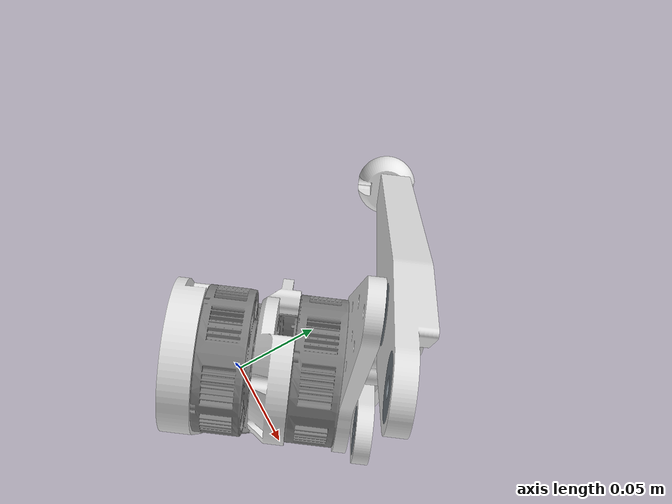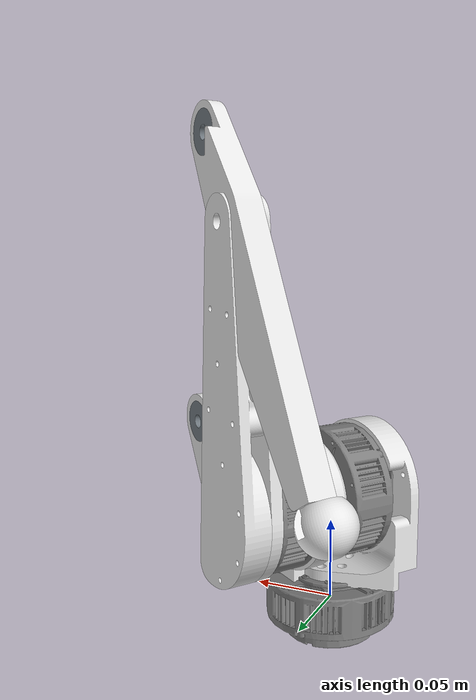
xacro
<?xml version="1.0" ?>
<!-- Generated using onshape-to-robot -->
<!-- Onshape https://cad.onshape.com/documents/bab46d1a02d1cb675f27d5f3/w/8adfe612a59991dc5461d3ee/e/fd595c6fbcbfabdca437c483 -->
<robot name="leg" xmlns:xacro="http://www.ros.org/wiki/xacro">
<xacro:arg name="sim_mode" default="true"/>

<xacro:if value="$(arg sim_mode)">
  <xacro:include filename="$(find quadro)/description/leg.gazebo" />
</xacro:if>

  <link name="world"/>

  <joint name="fixed" type="fixed">
    <parent link="world"/>
    <child link="motor"/>
  </joint>

  <!-- Link shaft -->
  <link name="shaft">
    <inertial>
      <origin xyz="-0.00100224 0.00617513 0.0818763" rpy="0 0 0"/>
      <mass value="0.453012"/>
      <inertia ixx="0.000489604" ixy="-7.28122e-06" ixz="1.56037e-06" iyy="0.000609097" iyz="-1.64399e-05" izz="0.000239462"/>
    </inertial>
    <!-- Part shaft -->
    <visual>
      <origin xyz="-8.07509e-16 -4.69306e-16 0.011" rpy="0.872665 -1.5708 0"/>
      <geometry>
        <mesh filename="file://$(find quadro)/description/leg_assets/shaft.stl"/>
      </geometry>
      <material name="shaft_material">
        <color rgba="0.498039 0.498039 0.498039 1"/>
      </material>
    </visual>
    <collision>
      <origin xyz="-8.07509e-16 -4.69306e-16 0.011" rpy="0.872665 -1.5708 0"/>
      <geometry>
        <mesh filename="file://$(find quadro)/description/leg_assets/shaft.stl"/>
      </geometry>
    </collision>
    <!-- Part motor -->
    <visual>
      <origin xyz="-0.00148165 0.0169353 0.0945" rpy="-1.5708 8.89644e-15 -1.48353"/>
      <geometry>
        <mesh filename="file://$(find quadro)/description/leg_assets/motor.stl"/>
      </geometry>
      <material name="motor_material">
        <color rgba="0.498039 0.498039 0.498039 1"/>
      </material>
    </visual>
    <collision>
      <origin xyz="-0.00148165 0.0169353 0.0945" rpy="-1.5708 8.89644e-15 -1.48353"/>
      <geometry>
        <mesh filename="file://$(find quadro)/description/leg_assets/motor.stl"/>
      </geometry>
    </collision>
    <!-- Part lin_1_support_bl -->
    <visual>
      <origin xyz="-0.00845411 0.0966309 0.0945" rpy="3.05433 1.5708 0"/>
      <geometry>
        <mesh filename="file://$(find quadro)/description/leg_assets/lin_1_support_bl.stl"/>
      </geometry>
      <material name="lin_1_support_bl_material">
        <color rgba="0.901961 0.901961 0.901961 1"/>
      </material>
    </visual>
    <collision>
      <origin xyz="-0.00845411 0.0966309 0.0945" rpy="3.05433 1.5708 0"/>
      <geometry>
        <mesh filename="file://$(find quadro)/description/leg_assets/lin_1_support_bl.stl"/>
      </geometry>
    </collision>
  </link>
  <!-- Link motor -->
  <link name="motor">
    <inertial>
      <origin xyz="-0.00034083 -2.5357e-05 0.00266737" rpy="0 0 0"/>
      <mass value="0.319783"/>
      <inertia ixx="0.00016651" ixy="-2.01865e-06" ixz="-8.2078e-07" iyy="0.000167286" iyz="9.47527e-07" izz="0.000282579"/>
    </inertial>
    <!-- Part motor_2 -->
    <visual>
      <origin xyz="-6.78949e-19 8.0914e-19 -0.01" rpy="2.26893 -1.5708 0"/>
      <geometry>
        <mesh filename="file://$(find quadro)/description/leg_assets/motor.stl"/>
      </geometry>
      <material name="motor_2_material">
        <color rgba="0.498039 0.498039 0.498039 1"/>
      </material>
    </visual>
    <collision>
      <origin xyz="-6.78949e-19 8.0914e-19 -0.01" rpy="2.26893 -1.5708 0"/>
      <geometry>
        <mesh filename="file://$(find quadro)/description/leg_assets/motor.stl"/>
      </geometry>
    </collision>
  </link>
  <!-- Joint from motor to shaft -->
  <joint name="bl_m1_s1" type="revolute">
    <origin xyz="-7.16465e-16 -4.82211e-16 -0.025" rpy="4.96925e-15 -7.80392e-15 2.44346"/>
    <parent link="motor"/>
    <child link="shaft"/>
    <axis xyz="0 0 1"/>
    <limit effort="10" velocity="12" lower="-3.14" upper="3.14"/>
    <joint_properties friction="0.5"/>
  </joint>
  <!-- Link shaft_2 -->
  <link name="shaft_2">
    <inertial>
      <origin xyz="0.00679431 0.00633758 -0.0491985" rpy="0 0 0"/>
      <mass value="0.524841"/>
      <inertia ixx="0.000610231" ixy="-0.000236595" ixz="0.000101861" iyy="0.000743295" iyz="0.00010283" izz="0.000885096"/>
    </inertial>
    <!-- Part lin_2_bl -->
    <visual>
      <origin xyz="-1.38778e-17 6.93889e-18 -0.0195" rpy="1.5708 -9.2554e-16 -0.174533"/>
      <geometry>
        <mesh filename="file://$(find quadro)/description/leg_assets/lin_2_bl.stl"/>
      </geometry>
      <material name="lin_2_bl_material">
        <color rgba="0.901961 0.901961 0.901961 1"/>
      </material>
    </visual>
    <collision>
      <origin xyz="-1.38778e-17 6.93889e-18 -0.0195" rpy="1.5708 -9.2554e-16 -0.174533"/>
      <geometry>
        <mesh filename="file://$(find quadro)/description/leg_assets/lin_2_bl.stl"/>
      </geometry>
    </collision>
    <!-- Part top_l -->
    <visual>
      <origin xyz="2.77556e-17 -3.46945e-17 -0.0725" rpy="1.5708 -1.18469e-15 0.610865"/>
      <geometry>
        <mesh filename="file://$(find quadro)/description/leg_assets/top_l.stl"/>
      </geometry>
      <material name="top_l_material">
        <color rgba="0.901961 0.901961 0.901961 1"/>
      </material>
    </visual>
    <collision>
      <origin xyz="2.77556e-17 -3.46945e-17 -0.0725" rpy="1.5708 -1.18469e-15 0.610865"/>
      <geometry>
        <mesh filename="file://$(find quadro)/description/leg_assets/top_l.stl"/>
      </geometry>
    </collision>
    <!-- Part motor_3 -->
    <visual>
      <origin xyz="0 -1.38778e-17 -0.0395" rpy="-1.39626 1.5708 0"/>
      <geometry>
        <mesh filename="file://$(find quadro)/description/leg_assets/motor.stl"/>
      </geometry>
      <material name="motor_3_material">
        <color rgba="0.498039 0.498039 0.498039 1"/>
      </material>
    </visual>
    <collision>
      <origin xyz="0 -1.38778e-17 -0.0395" rpy="-1.39626 1.5708 0"/>
      <geometry>
        <mesh filename="file://$(find quadro)/description/leg_assets/motor.stl"/>
      </geometry>
    </collision>
    <!-- Part bot_l -->
    <visual>
      <origin xyz="4.16334e-17 -2.77556e-17 -0.0725" rpy="1.5708 -1.18469e-15 0.610865"/>
      <geometry>
        <mesh filename="file://$(find quadro)/description/leg_assets/bot_l.stl"/>
      </geometry>
      <material name="bot_l_material">
        <color rgba="0.901961 0.901961 0.901961 1"/>
      </material>
    </visual>
    <collision>
      <origin xyz="4.16334e-17 -2.77556e-17 -0.0725" rpy="1.5708 -1.18469e-15 0.610865"/>
      <geometry>
        <mesh filename="file://$(find quadro)/description/leg_assets/bot_l.stl"/>
      </geometry>
    </collision>
    <!-- Part shaft_2 -->
    <visual>
      <origin xyz="-1.38778e-17 0 0.01" rpy="1.5708 1.5708 0"/>
      <geometry>
        <mesh filename="file://$(find quadro)/description/leg_assets/shaft.stl"/>
      </geometry>
      <material name="shaft_2_material">
        <color rgba="0.498039 0.498039 0.498039 1"/>
      </material>
    </visual>
    <collision>
      <origin xyz="-1.38778e-17 0 0.01" rpy="1.5708 1.5708 0"/>
      <geometry>
        <mesh filename="file://$(find quadro)/description/leg_assets/shaft.stl"/>
      </geometry>
    </collision>
  </link>
  <!-- Link shaft_3 -->
  <link name="shaft_3">
    <inertial>
      <origin xyz="-0.00823991 0.00823991 -0.0152617" rpy="0 0 0"/>
      <mass value="0.0992632"/>
      <inertia ixx="3.95043e-05" ixy="2.3154e-05" ixz="-1.04189e-05" iyy="3.95043e-05" iyz="1.04189e-05" izz="6.07656e-05"/>
    </inertial>
    <!-- Part bearing -->
    <visual>
      <origin xyz="-0.0388909 0.0388909 -0.032" rpy="-1.5708 -7.72957e-17 -2.35619"/>
      <geometry>
        <mesh filename="file://$(find quadro)/description/leg_assets/bearing.stl"/>
      </geometry>
      <material name="bearing_material">
        <color rgba="0.439216 0.47451 0.501961 1"/>
      </material>
    </visual>
    <collision>
      <origin xyz="-0.0388909 0.0388909 -0.032" rpy="-1.5708 -7.72957e-17 -2.35619"/>
      <geometry>
        <mesh filename="file://$(find quadro)/description/leg_assets/bearing.stl"/>
      </geometry>
    </collision>
    <!-- Part shaft_3 -->
    <visual>
      <origin xyz="1.38778e-17 -3.46945e-18 0.01" rpy="1.5708 1.5708 0"/>
      <geometry>
        <mesh filename="file://$(find quadro)/description/leg_assets/shaft.stl"/>
      </geometry>
      <material name="shaft_3_material">
        <color rgba="0.498039 0.498039 0.498039 1"/>
      </material>
    </visual>
    <collision>
      <origin xyz="1.38778e-17 -3.46945e-18 0.01" rpy="1.5708 1.5708 0"/>
      <geometry>
        <mesh filename="file://$(find quadro)/description/leg_assets/shaft.stl"/>
      </geometry>
    </collision>
    <!-- Part mid_l -->
    <visual>
      <origin xyz="1.38778e-17 0 -0.014" rpy="1.5708 -7.72957e-17 -2.35619"/>
      <geometry>
        <mesh filename="file://$(find quadro)/description/leg_assets/mid_l.stl"/>
      </geometry>
      <material name="mid_l_material">
        <color rgba="0.901961 0.901961 0.901961 1"/>
      </material>
    </visual>
    <collision>
      <origin xyz="1.38778e-17 0 -0.014" rpy="1.5708 -7.72957e-17 -2.35619"/>
      <geometry>
        <mesh filename="file://$(find quadro)/description/leg_assets/mid_l.stl"/>
      </geometry>
    </collision>
  </link>
  <!-- Joint from shaft_2 to shaft_3 -->
  <joint name="bl_m3_s3" type="revolute">
    <origin xyz="0 -2.77556e-17 -0.0495" rpy="1.50009e-15 8.62308e-16 -2.3911"/>
    <parent link="shaft_2"/>
    <child link="shaft_3"/>
    <axis xyz="0 0 1"/>
    <limit effort="10" velocity="12" lower="-3.14" upper="3.14"/>
    <joint_properties friction="0.5"/>
    <mimic joint="bl_l4_l3" multiplier="1.0"/>
  </joint>
  <!-- Link l4_l -->
  <link name="l4_l">
    <inertial>
      <origin xyz="0.000904018 0.036899 -0.00535524" rpy="0 0 0"/>
      <mass value="0.0940232"/>
      <inertia ixx="0.000523053" ixy="1.96238e-06" ixz="4.23975e-07" iyy="8.81622e-06" iyz="3.90493e-06" izz="0.000528442"/>
    </inertial>
    <!-- Part bearing_2 -->
    <visual>
      <origin xyz="-2.77556e-17 8.32667e-17 -0.008" rpy="-1.5708 -8.83135e-18 0"/>
      <geometry>
        <mesh filename="file://$(find quadro)/description/leg_assets/bearing.stl"/>
      </geometry>
      <material name="bearing_2_material">
        <color rgba="0.439216 0.47451 0.501961 1"/>
      </material>
    </visual>
    <collision>
      <origin xyz="-2.77556e-17 8.32667e-17 -0.008" rpy="-1.5708 -8.83135e-18 0"/>
      <geometry>
        <mesh filename="file://$(find quadro)/description/leg_assets/bearing.stl"/>
      </geometry>
    </collision>
    <!-- Part bearing_3 -->
    <visual>
      <origin xyz="-5.55112e-17 -0.055 -0.008" rpy="-1.5708 -8.83135e-18 0"/>
      <geometry>
        <mesh filename="file://$(find quadro)/description/leg_assets/bearing.stl"/>
      </geometry>
      <material name="bearing_3_material">
        <color rgba="0.439216 0.47451 0.501961 1"/>
      </material>
    </visual>
    <collision>
      <origin xyz="-5.55112e-17 -0.055 -0.008" rpy="-1.5708 -8.83135e-18 0"/>
      <geometry>
        <mesh filename="file://$(find quadro)/description/leg_assets/bearing.stl"/>
      </geometry>
    </collision>
    <!-- Part feet -->
    <visual>
      <origin xyz="-0.200014 -0.04 -0.039" rpy="-1.5708 3.00265e-16 -3.14159"/>
      <geometry>
        <mesh filename="file://$(find quadro)/description/leg_assets/feet.stl"/>
      </geometry>
      <material name="feet_material">
        <color rgba="0.917647 0.917647 0.917647 1"/>
      </material>
    </visual>
    <collision>
      <origin xyz="-0.200014 -0.04 -0.039" rpy="-1.5708 3.00265e-16 -3.14159"/>
      <geometry>
        <mesh filename="file://$(find quadro)/description/leg_assets/feet.stl"/>
      </geometry>
    </collision>
    <!-- Part l4_l -->
    <visual>
      <origin xyz="-0.16 -0.002 -0.008" rpy="1.5708 -8.83135e-18 0"/>
      <geometry>
        <mesh filename="file://$(find quadro)/description/leg_assets/l4_l.stl"/>
      </geometry>
      <material name="l4_l_material">
        <color rgba="0.901961 0.901961 0.901961 1"/>
      </material>
    </visual>
    <collision>
      <origin xyz="-0.16 -0.002 -0.008" rpy="1.5708 -8.83135e-18 0"/>
      <geometry>
        <mesh filename="file://$(find quadro)/description/leg_assets/l4_l.stl"/>
      </geometry>
    </collision>
  </link>
  <!-- Joint from shaft_2 to l4_l -->
  <joint name="bl_l4_l3" type="revolute">
    <origin xyz="0.129917 0.0934105 -0.0735" rpy="-1.39777e-15 4.10207e-16 1.53589"/>
    <parent link="shaft_2"/>
    <child link="l4_l"/>
    <axis xyz="0 0 1"/>
    <limit effort="10" velocity="12" lower="-3.14" upper="3.14"/>
    <joint_properties friction="0.5"/>
  </joint>
  <!-- Joint from shaft to shaft_2 -->
  <joint name="bl_m2_s2" type="revolute">
    <origin xyz="-0.00061009 0.00697336 0.0945" rpy="1.5708 -1.0472 -3.05433"/>
    <parent link="shaft"/>
    <child link="shaft_2"/>
    <axis xyz="0 0 1"/>
    <limit effort="10" velocity="12" lower="-3.14" upper="3.14"/>
    <joint_properties friction="0.5"/>
  </joint>
</robot>
